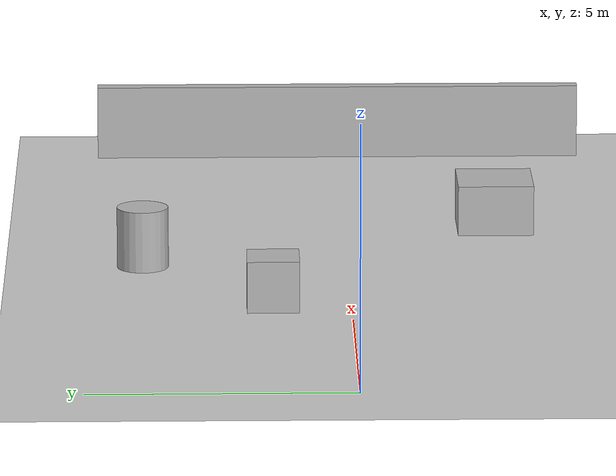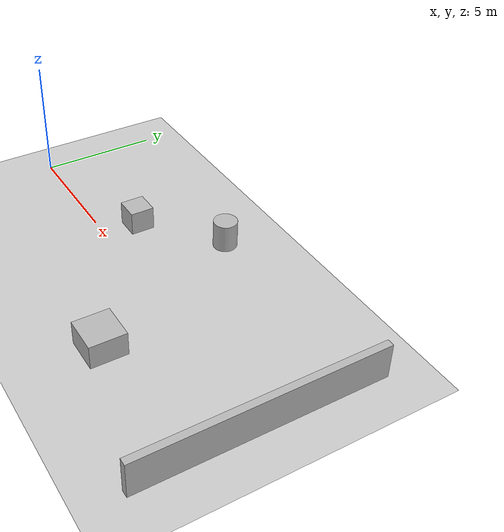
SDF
<?xml version="1.0"?>
<sdf version="1.6">
  <world name="corobo_outdoor">

    <!-- THE DATUM: this is what turns Gazebo X/Y into real lat/lon -->
    <spherical_coordinates>
      <surface_model>EARTH_WGS84</surface_model>
      <world_frame_orientation>ENU</world_frame_orientation>
      <latitude_deg>13.0100000</latitude_deg>
      <longitude_deg>80.2350000</longitude_deg>
      <elevation>10.0</elevation>
      <heading_deg>0</heading_deg>
    </spherical_coordinates>

    <physics type="ode">
      <max_step_size>0.002</max_step_size>
      <real_time_factor>1.0</real_time_factor>
      <real_time_update_rate>500</real_time_update_rate>
    </physics>

    <include><uri>model://sun</uri></include>
    <include><uri>model://ground_plane</uri></include>

    <model name="box_a">
      <static>true</static>
      <pose>6 1.5 0.5 0 0 0</pose>
      <link name="link">
        <collision name="c"><geometry><box><size>1 1 1</size></box></geometry></collision>
        <visual name="v"><geometry><box><size>1 1 1</size></box></geometry></visual>
      </link>
    </model>

    <model name="box_b">
      <static>true</static>
      <pose>12 -3 0.5 0 0 0</pose>
      <link name="link">
        <collision name="c"><geometry><box><size>1.5 1.5 1</size></box></geometry></collision>
        <visual name="v"><geometry><box><size>1.5 1.5 1</size></box></geometry></visual>
      </link>
    </model>

    <model name="cyl_a">
      <static>true</static>
      <pose>9 4 0.6 0 0 0</pose>
      <link name="link">
        <collision name="c"><geometry><cylinder><radius>0.5</radius><length>1.2</length></cylinder></geometry></collision>
        <visual name="v"><geometry><cylinder><radius>0.5</radius><length>1.2</length></cylinder></geometry></visual>
      </link>
    </model>

    <model name="wall">
      <static>true</static>
      <pose>18 0 0.75 0 0 0</pose>
      <link name="link">
        <collision name="c"><geometry><box><size>0.3 10 1.5</size></box></geometry></collision>
        <visual name="v"><geometry><box><size>0.3 10 1.5</size></box></geometry></visual>
      </link>
    </model>

  </world>
</sdf>
